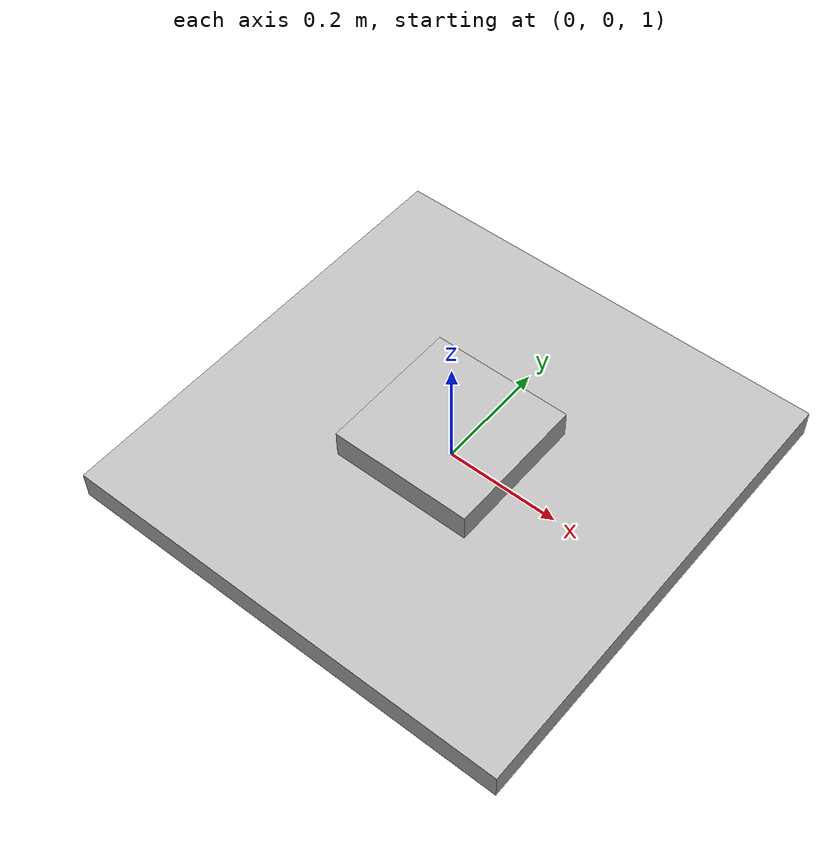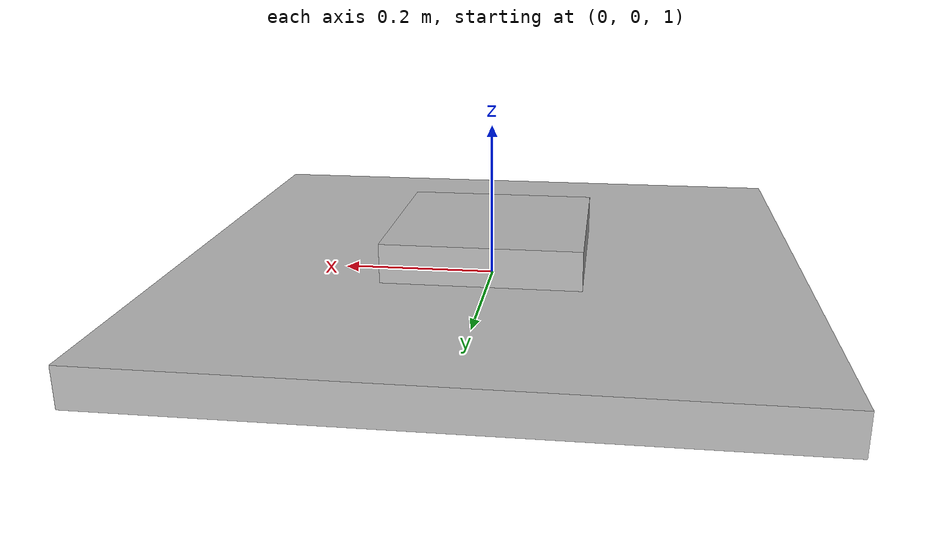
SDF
<?xml version="1.0" ?>
<sdf version="1.9">
    <world name="two_axis_world">

        <physics name="1ms" type="ode">
            <max_step_size>0.001</max_step_size>
            <real_time_factor>1.0</real_time_factor>
        </physics>

        <plugin
                filename="gz-sim-physics-system"
                name="gz::sim::systems::Physics"/>

        <plugin
                filename="gz-sim-scene-broadcaster-system"
                name="gz::sim::systems::SceneBroadcaster"/>

        <model name="two_axis_rig">
            <pose>0 0 1 0 0 0</pose>

            <link name="base">
                <visual name="base_visual">
                    <geometry>
                        <box>
                            <size>0.25 0.25 0.15</size>
                        </box>
                    </geometry>
                </visual>
                <collision name="base_collision">
                    <geometry>
                        <box>
                            <size>0.25 0.25 0.15</size>
                        </box>
                    </geometry>
                </collision>
                <inertial>
                    <mass>5.0</mass>
                    <inertia>
                        <ixx>1</ixx>
                        <iyy>1</iyy>
                        <izz>1</izz>
                    </inertia>
                </inertial>
            </link>

            <joint name="world_to_base" type="fixed">
                <parent>world</parent>
                <child>base</child>
            </joint>

            <!-- проміжна рамка для roll -->
            <link name="roll_frame">
                <visual name="roll_frame_visual">
                    <geometry>
                        <box>
                            <size>0.12 0.12 0.12</size>
                        </box>
                    </geometry>
                </visual>
                <collision name="roll_frame_collision">
                    <geometry>
                        <box>
                            <size>0.12 0.12 0.12</size>
                        </box>
                    </geometry>
                </collision>
                <inertial>
                    <mass>0.1</mass>
                    <inertia>
                        <ixx>0.01</ixx>
                        <iyy>0.01</iyy>
                        <izz>0.01</izz>
                    </inertia>
                </inertial>
            </link>

            <joint name="roll_joint" type="revolute">
                <parent>base</parent>
                <child>roll_frame</child>
                <axis>
                    <xyz>1 0 0</xyz>
                    <limit>
                        <lower>-3.14159</lower>
                        <upper>3.14159</upper>
                        <effort>10.0</effort>
                        <velocity>20.0</velocity>
                    </limit>
                    <dynamics>
                        <damping>0.02</damping>
                    </dynamics>
                </axis>
            </joint>

            <!-- основне тіло, яке нахиляється по pitch -->
            <link name="body">
                <pose>0 0 0 0 0 0</pose>
                <visual name="body_visual">
                    <geometry>
                        <box>
                            <size>0.8 0.8 0.05</size>
                        </box>
                    </geometry>
                </visual>
                <collision name="body_collision">
                    <geometry>
                        <box>
                            <size>0.8 0.8 0.05</size>
                        </box>
                    </geometry>
                </collision>
                <inertial>
                    <mass>0.5</mass>
                    <inertia>
                        <ixx>0.03</ixx>
                        <iyy>0.03</iyy>
                        <izz>0.05</izz>
                    </inertia>
                </inertial>
            </link>

            <joint name="pitch_joint" type="revolute">
                <parent>roll_frame</parent>
                <child>body</child>
                <axis>
                    <xyz>0 1 0</xyz>
                    <limit>
                        <lower>-3.14159</lower>
                        <upper>3.14159</upper>
                        <effort>10.0</effort>
                        <velocity>20.0</velocity>
                    </limit>
                    <dynamics>
                        <damping>0.02</damping>
                    </dynamics>
                </axis>
            </joint>

            <plugin
                    filename="libHilPlugin"
                    name="hil_plugin::HilPlugin">

                <roll_joint_name>roll_joint</roll_joint_name>
                <pitch_joint_name>pitch_joint</pitch_joint_name>

                <serial_port>/dev/cu.usbmodem103</serial_port>
                <baud>115200</baud>

                <max_roll_torque>0.15</max_roll_torque>
                <max_pitch_torque>0.15</max_pitch_torque>

                <roll_torque_sign>1.0</roll_torque_sign>
                <pitch_torque_sign>1.0</pitch_torque_sign>

                <hil_rate_hz>100</hil_rate_hz>

                <use_joystick>true</use_joystick>
                <joystick_index>0</joystick_index>
                <manual_rate_hz>50</manual_rate_hz>

                <disturbance_roll_torque>0.05</disturbance_roll_torque>
                <disturbance_pitch_torque>-0.08</disturbance_pitch_torque>
                <disturbance_start>0.2</disturbance_start>
                <disturbance_end>0.6</disturbance_end>

                <log_path>two_axis_hil_log.csv</log_path>
                <log_rate_hz>50</log_rate_hz>
            </plugin>

        </model>
    </world>
</sdf>
